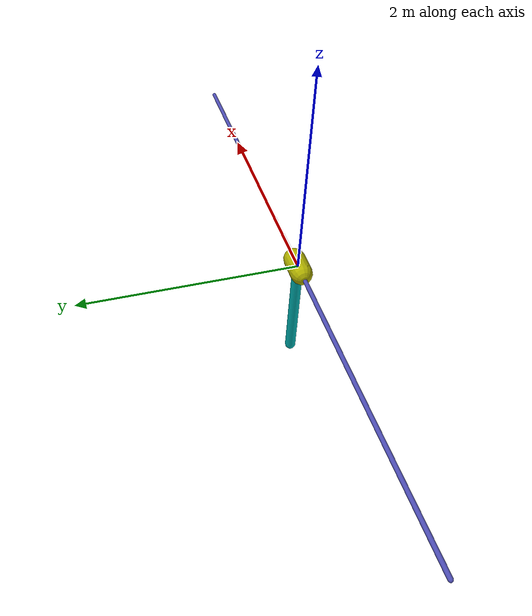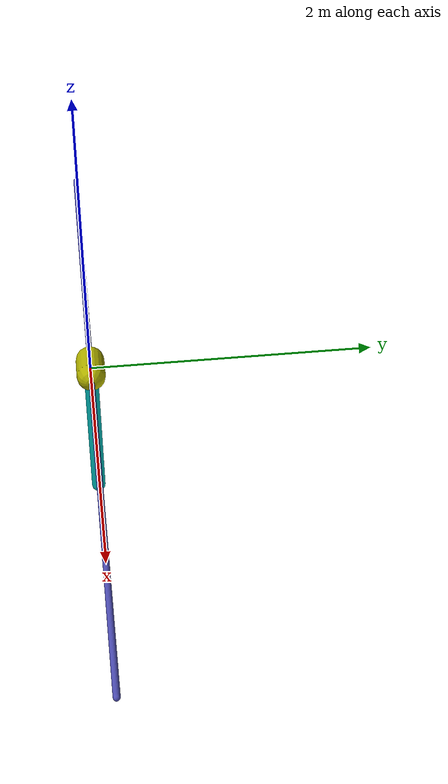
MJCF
<?xml version="1.0" encoding="utf-8"?>
<mujoco model="cartpole">
	<compiler inertiafromgeom="true"></compiler>
	<default>
		<joint armature="0" damping="1" limited="true"></joint>
		<geom contype="0" friction="1 0.1 0.1" rgba="0.7 0.7 0 1"></geom>
		<tendon></tendon>
		<motor ctrlrange="-3 3" ctrllimited="true"></motor>
	</default>
	<asset>
		<texture type="skybox" builtin="checker" rgb1="1 1 1" rgb2="1 1 1" width="256" height="256"></texture>
		<texture name="texgeom" type="cube" builtin="flat" mark="cross" width="127" height="1278" rgb1="0.8 0.6 0.4" rgb2="0.8 0.6 0.4" markrgb="1 1 1" random="0.01"></texture>
		<texture name="texplane" type="2d" builtin="checker" rgb1=".5 .5 .5" rgb2=".5 .5 .5" width="100" height="100"></texture>
		<texture name="texplane_show" type="2d" builtin="checker" rgb1="0 0 0" rgb2="0.9 0.9 0.9" width="100" height="100"></texture>
		<material name="MatPlane" texture="texplane" shininess="1" texrepeat="30 30" specular="1" reflectance="0.5"></material>
		<material name="geom" texture="texgeom" texuniform="true"></material>
	</asset>
	<option gravity="0 0 -9.81" integrator="RK4" timestep="0.02"></option>
	<size nstack="3000"></size>
	<worldbody>
		<geom name="rail" pos="0 0 0" quat="0.707 0 0.707 0" rgba="0.3 0.3 0.7 1" size="0.02 3" type="capsule"></geom>
		<body name="cart" pos="0 0 0">
			<joint axis="1 0 0" limited="true" name="slider" pos="0 0 0" range="-2.5 2.5" type="slide"></joint>
			<geom name="cart" pos="0 0 0" quat="0.707 0 0.707 0" size="0.1 0.1" type="capsule"></geom>
			<body name="pole" pos="0 0 0">
				<joint axis="0 1 0" limited="false" name="hinge" pos="0 0 0" range="-180 180" type="hinge"></joint>
				<geom fromto="0 0 0 0.001 0 -1.040342" name="cpole" rgba="0 0.7 0.7 1" size="0.049 0.3" type="capsule"></geom>
			</body>
		</body>
	</worldbody>
	<actuator>
		<motor gear="100" joint="slider" name="slide"></motor>
	</actuator>
</mujoco>
